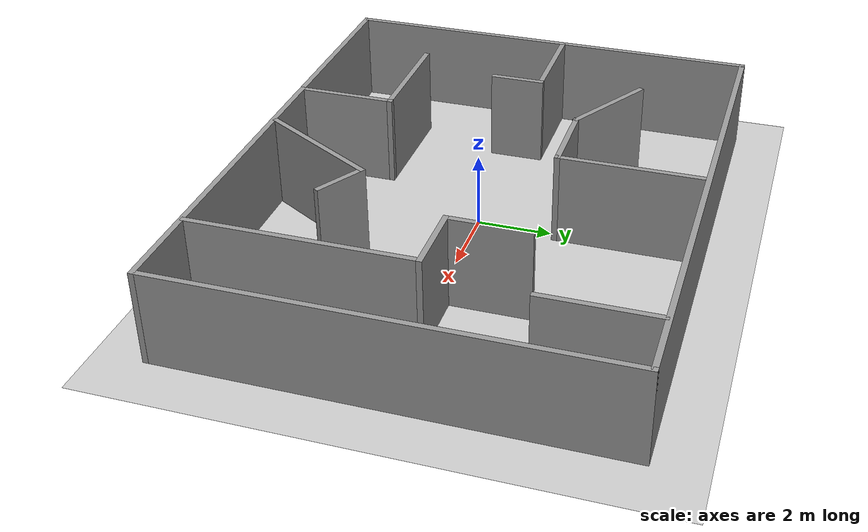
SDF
<sdf version="1.6">
 <world name="default">
  <light name="sun" type="directional">
   <pose>0 0 10 0 -0 0</pose>
   <diffuse>0.8 0.8 0.8 1</diffuse>
   <specular>0.2 0.2 0.2 1</specular>
   <attenuation>
    <range>1000</range>
    <constant>0.9</constant>
    <linear>0.01</linear>
    <quadratic>0.001</quadratic>
   </attenuation>
   <direction>-0.5 0.1 -0.9</direction>
  </light>
  <model name="ground_plane">
   <static>1</static>
   <link name="link">
    <collision name="collision">
     <geometry><plane><normal>0 0 1</normal><size>100 100</size></plane></geometry>
     <surface><friction><ode><mu>100</mu><mu2>50</mu2></ode></friction></surface>
    </collision>
    <visual name="visual">
     <cast_shadows>0</cast_shadows>
     <geometry><plane><normal>0 0 1</normal><size>100 100</size></plane></geometry>
     <material>
      <script><uri>file://media/materials/scripts/gazebo.material</uri><name>Gazebo/Grey</name></script>
     </material>
    </visual>
   </link>
  </model>
  <gravity>0 0 -9.8</gravity>
  <magnetic_field>6e-06 2.3e-05 -4.2e-05</magnetic_field>
  <atmosphere type="adiabatic"/>
  <physics name="default_physics" default="0" type="ode">
   <max_step_size>0.001</max_step_size>
   <real_time_factor>1</real_time_factor>
   <real_time_update_rate>1000</real_time_update_rate>
  </physics>
  <scene><ambient>0.4 0.4 0.4 1</ambient><background>0.7 0.7 0.7 1</background><shadows>1</shadows></scene>
  <spherical_coordinates>
   <surface_model>EARTH_WGS84</surface_model>
   <latitude_deg>0</latitude_deg>
   <longitude_deg>0</longitude_deg>
   <elevation>0</elevation>
   <heading_deg>0</heading_deg>
  </spherical_coordinates>
  <model name="room2">
   <pose>0.678043 0.203596 0 0 -0 0</pose>
   <link name="Wall_11">
    <collision name="Wall_11_Collision">
     <geometry><box><size>3.75 0.15 2.5</size></box></geometry>
     <pose>0 0 1.25 0 -0 0</pose>
    </collision>
    <visual name="Wall_11_Visual">
     <pose>0 0 1.25 0 -0 0</pose>
     <geometry><box><size>3.75 0.15 2.5</size></box></geometry>
     <material>
      <script><uri>file://media/materials/scripts/gazebo.material</uri><name>Gazebo/Grey</name></script>
      <ambient>1 1 1 1</ambient>
     </material>
     <meta><layer>0</layer></meta>
    </visual>
    <pose>0.660812 -4.1499 0 0 -0 1.0472</pose>
   </link>
   <link name="Wall_12">
    <collision name="Wall_12_Collision">
     <geometry><box><size>1.5 0.15 2.5</size></box></geometry>
     <pose>0 0 1.25 0 -0 0</pose>
    </collision>
    <visual name="Wall_12_Visual">
     <pose>0 0 1.25 0 -0 0</pose>
     <geometry><box><size>1.5 0.15 2.5</size></box></geometry>
     <material>
      <script><uri>file://media/materials/scripts/gazebo.material</uri><name>Gazebo/Grey</name></script>
      <ambient>1 1 1 1</ambient>
     </material>
     <meta><layer>0</layer></meta>
    </visual>
    <pose>2.14538 -2.92855 0 0 -0 -0.523599</pose>
   </link>
   <link name="Wall_14">
    <collision name="Wall_14_Collision">
     <geometry><box><size>2.75 0.15 2.5</size></box></geometry>
     <pose>0 0 1.25 0 -0 0</pose>
    </collision>
    <visual name="Wall_14_Visual">
     <pose>0 0 1.25 0 -0 0</pose>
     <geometry><box><size>2.75 0.15 2.5</size></box></geometry>
     <material>
      <script><uri>file://media/materials/scripts/gazebo.material</uri><name>Gazebo/Grey</name></script>
      <ambient>1 1 1 1</ambient>
     </material>
     <meta><layer>0</layer></meta>
    </visual>
    <pose>-5.79529 0.482737 0 0 -0 0</pose>
   </link>
   <link name="Wall_15">
    <collision name="Wall_15_Collision">
     <geometry><box><size>1.5 0.15 2.5</size></box></geometry>
     <pose>0 0 1.25 0 -0 0</pose>
    </collision>
    <visual name="Wall_15_Visual">
     <pose>0 0 1.25 0 -0 0</pose>
     <geometry><box><size>1.5 0.15 2.5</size></box></geometry>
     <material>
      <script><uri>file://media/materials/scripts/gazebo.material</uri><name>Gazebo/Grey</name></script>
      <ambient>1 1 1 1</ambient>
     </material>
     <meta><layer>0</layer></meta>
    </visual>
    <pose>-4.49529 -0.192263 0 0 -0 -1.5708</pose>
   </link>
   <link name="Wall_17">
    <collision name="Wall_17_Collision">
     <geometry><box><size>6 0.15 2.5</size></box></geometry>
     <pose>0 0 1.25 0 -0 0</pose>
    </collision>
    <visual name="Wall_17_Visual">
     <pose>0 0 1.25 0 -0 0</pose>
     <geometry><box><size>6 0.15 2.5</size></box></geometry>
     <material>
      <script><uri>file://media/materials/scripts/gazebo.material</uri><name>Gazebo/Grey</name></script>
      <ambient>1 1 1 1</ambient>
     </material>
     <meta><layer>0</layer></meta>
    </visual>
    <pose>4.90289 -2.81873 0 0 -0 1.5708</pose>
   </link>
   <link name="Wall_18">
    <collision name="Wall_18_Collision">
     <geometry><box><size>2 0.15 2.5</size></box></geometry>
     <pose>0 0 1.25 0 -0 0</pose>
    </collision>
    <visual name="Wall_18_Visual">
     <pose>0 0 1.25 0 -0 0</pose>
     <geometry><box><size>2 0.15 2.5</size></box></geometry>
     <material>
      <script><uri>file://media/materials/scripts/gazebo.material</uri><name>Gazebo/Grey</name></script>
      <ambient>1 1 1 1</ambient>
     </material>
     <meta><layer>0</layer></meta>
    </visual>
    <pose>3.97789 0.106275 0 0 -0 3.14159</pose>
   </link>
   <link name="Wall_19">
    <collision name="Wall_19_Collision">
     <geometry><box><size>2.25 0.15 2.5</size></box></geometry>
     <pose>0 0 1.25 0 -0 0</pose>
    </collision>
    <visual name="Wall_19_Visual">
     <pose>0 0 1.25 0 -0 0</pose>
     <geometry><box><size>2.25 0.15 2.5</size></box></geometry>
     <material>
      <script><uri>file://media/materials/scripts/gazebo.material</uri><name>Gazebo/Grey</name></script>
      <ambient>1 1 1 1</ambient>
     </material>
     <meta><layer>0</layer></meta>
    </visual>
    <pose>3.05289 1.15627 0 0 -0 1.5708</pose>
   </link>
   <link name="Wall_21">
    <collision name="Wall_21_Collision">
     <geometry><box><size>4 0.15 2.5</size></box></geometry>
     <pose>0 0 1.25 0 -0 0</pose>
    </collision>
    <visual name="Wall_21_Visual">
     <pose>0 0 1.25 0 -0 0</pose>
     <geometry><box><size>4 0.15 2.5</size></box></geometry>
     <material>
      <script><uri>file://media/materials/scripts/gazebo.material</uri><name>Gazebo/Grey</name></script>
      <ambient>1 1 1 1</ambient>
     </material>
     <meta><layer>0</layer></meta>
    </visual>
    <pose>-0.484049 3.87472 0 0 -0 -1.5708</pose>
   </link>
   <link name="Wall_22">
    <collision name="Wall_22_Collision">
     <geometry><box><size>2.25 0.15 2.5</size></box></geometry>
     <pose>0 0 1.25 0 -0 0</pose>
    </collision>
    <visual name="Wall_22_Visual">
     <pose>0 0 1.25 0 -0 0</pose>
     <geometry><box><size>2.25 0.15 2.5</size></box></geometry>
     <material>
      <script><uri>file://media/materials/scripts/gazebo.material</uri><name>Gazebo/Grey</name></script>
      <ambient>1 1 1 1</ambient>
     </material>
     <meta><layer>0</layer></meta>
    </visual>
    <pose>-1.53405 1.94972 0 0 -0 3.14159</pose>
   </link>
   <link name="Wall_23">
    <collision name="Wall_23_Collision">
     <geometry><box><size>2.75 0.15 2.5</size></box></geometry>
     <pose>0 0 1.25 0 -0 0</pose>
    </collision>
    <visual name="Wall_23_Visual">
     <pose>0 0 1.25 0 -0 0</pose>
     <geometry><box><size>2.75 0.15 2.5</size></box></geometry>
     <material>
      <script><uri>file://media/materials/scripts/gazebo.material</uri><name>Gazebo/Grey</name></script>
      <ambient>1 1 1 1</ambient>
     </material>
     <meta><layer>0</layer></meta>
    </visual>
    <pose>-3.70988 2.59972 0 0 -0 2.61799</pose>
   </link>
   <link name="Wall_25">
    <collision name="Wall_25_Collision">
     <geometry><box><size>3 0.15 2.5</size></box></geometry>
     <pose>0 0 1.25 0 -0 0</pose>
    </collision>
    <visual name="Wall_25_Visual">
     <pose>0 0 1.25 0 -0 0</pose>
     <geometry><box><size>3 0.15 2.5</size></box></geometry>
     <material>
      <script><uri>file://media/materials/scripts/gazebo.material</uri><name>Gazebo/Grey</name></script>
      <ambient>1 1 1 1</ambient>
     </material>
     <meta><layer>0</layer></meta>
    </visual>
    <pose>5.42759 4.30476 0 0 -0 -1.5708</pose>
   </link>
   <link name="Wall_3">
    <collision name="Wall_3_Collision">
     <geometry><box><size>5 0.15 2.5</size></box></geometry>
     <pose>0 0 1.25 0 -0 0</pose>
    </collision>
    <visual name="Wall_3_Visual">
     <pose>0 0 1.25 0 -0 0</pose>
     <geometry><box><size>5 0.15 2.5</size></box></geometry>
     <material>
      <script><uri>file://media/materials/scripts/gazebo.material</uri><name>Gazebo/Grey</name></script>
      <ambient>1 1 1 1</ambient>
     </material>
     <meta><layer>0</layer></meta>
    </visual>
    <pose>-4.75 -5.8 0 0 -0 3.14159</pose>
   </link>
   <link name="Wall_4">
    <collision name="Wall_4_Collision">
     <geometry><box><size>11.75 0.15 2.5</size></box></geometry>
     <pose>0 0 1.25 0 -0 0</pose>
    </collision>
    <visual name="Wall_4_Visual">
     <pose>0 0 1.25 0 -0 0</pose>
     <geometry><box><size>11.75 0.15 2.5</size></box></geometry>
     <material>
      <script><uri>file://media/materials/scripts/gazebo.material</uri><name>Gazebo/Grey</name></script>
      <ambient>1 1 1 1</ambient>
     </material>
     <meta><layer>0</layer></meta>
    </visual>
    <pose>-7.175 0 0 0 -0 1.5708</pose>
   </link>
   <link name="Wall_5">
    <collision name="Wall_5_Collision">
     <geometry><box><size>14.5 0.15 2.5</size></box></geometry>
     <pose>0 0 1.25 0 -0 0</pose>
    </collision>
    <visual name="Wall_5_Visual">
     <pose>0 0 1.25 0 -0 0</pose>
     <geometry><box><size>14.5 0.15 2.5</size></box></geometry>
     <material>
      <script><uri>file://media/materials/scripts/gazebo.material</uri><name>Gazebo/Grey</name></script>
      <ambient>1 1 1 1</ambient>
     </material>
     <meta><layer>0</layer></meta>
    </visual>
    <pose>-0 5.8 0 0 -0 0</pose>
   </link>
   <link name="Wall_6">
    <collision name="Wall_6_Collision">
     <geometry><box><size>11.75 0.15 2.5</size></box></geometry>
     <pose>0 0 1.25 0 -0 0</pose>
    </collision>
    <visual name="Wall_6_Visual">
     <pose>0 0 1.25 0 -0 0</pose>
     <geometry><box><size>11.75 0.15 2.5</size></box></geometry>
     <material>
      <script><uri>file://media/materials/scripts/gazebo.material</uri><name>Gazebo/Grey</name></script>
      <ambient>1 1 1 1</ambient>
     </material>
     <meta><layer>0</layer></meta>
    </visual>
    <pose>7.175 0 0 0 -0 -1.5708</pose>
   </link>
   <link name="Wall_7">
    <collision name="Wall_7_Collision">
     <geometry><box><size>9.5 0.15 2.5</size></box></geometry>
     <pose>0 0 1.25 0 -0 0</pose>
    </collision>
    <visual name="Wall_7_Visual">
     <pose>0 0 1.25 0 -0 0</pose>
     <geometry><box><size>9.5 0.15 2.5</size></box></geometry>
     <material>
      <script><uri>file://media/materials/scripts/gazebo.material</uri><name>Gazebo/Grey</name></script>
      <ambient>1 1 1 1</ambient>
     </material>
     <meta><layer>0</layer></meta>
    </visual>
    <pose>2.5 -5.8 0 0 -0 3.14159</pose>
   </link>
   <link name="Wall_8">
    <collision name="Wall_8_Collision">
     <geometry><box><size>2.75 0.15 2.5</size></box></geometry>
     <pose>0 0 1.25 0 -0 0</pose>
    </collision>
    <visual name="Wall_8_Visual">
     <pose>0 0 1.25 0 -0 0</pose>
     <geometry><box><size>2.75 0.15 2.5</size></box></geometry>
     <material>
      <script><uri>file://media/materials/scripts/gazebo.material</uri><name>Gazebo/Grey</name></script>
      <ambient>1 1 1 1</ambient>
     </material>
     <meta><layer>0</layer></meta>
    </visual>
    <pose>-2.175 -4.5 0 0 -0 1.5708</pose>
   </link>
   <link name="Wall_9">
    <collision name="Wall_9_Collision">
     <geometry><box><size>3.25 0.15 2.5</size></box></geometry>
     <pose>0 0 1.25 0 -0 0</pose>
    </collision>
    <visual name="Wall_9_Visual">
     <pose>0 0 1.25 0 -0 0</pose>
     <geometry><box><size>3.25 0.15 2.5</size></box></geometry>
     <material>
      <script><uri>file://media/materials/scripts/gazebo.material</uri><name>Gazebo/Grey</name></script>
      <ambient>1 1 1 1</ambient>
     </material>
     <meta><layer>0</layer></meta>
    </visual>
    <pose>-3.725 -3.2 0 0 -0 3.14159</pose>
   </link>
   <static>1</static>
  </model>
 </world>
</sdf>
